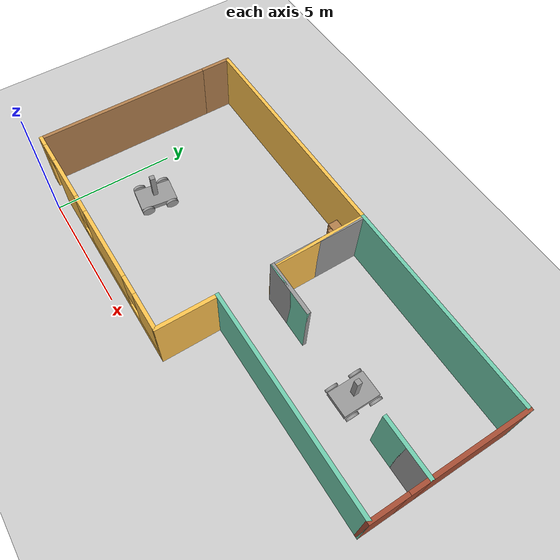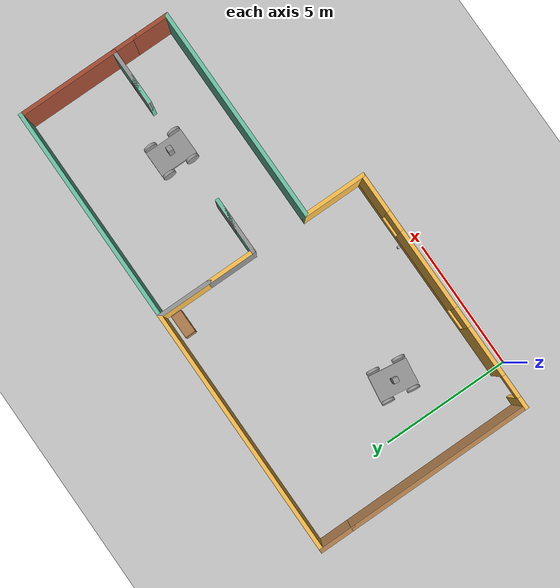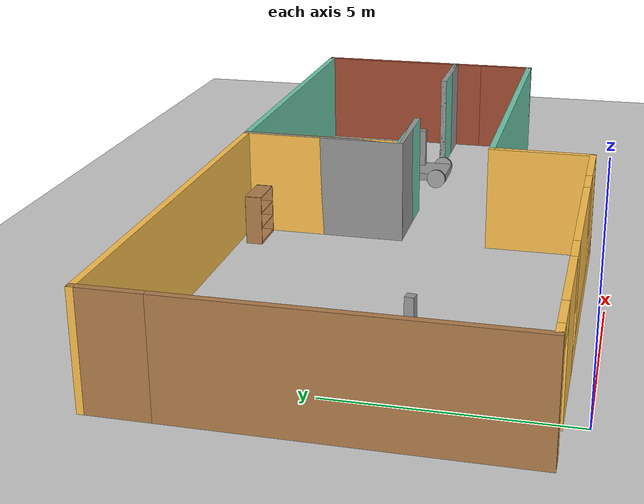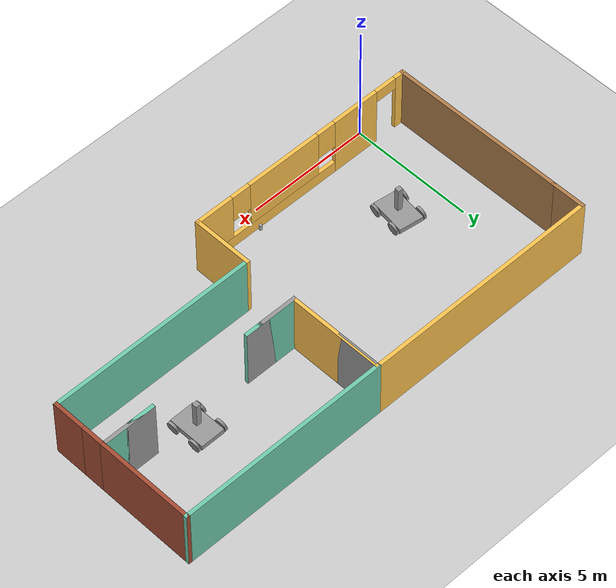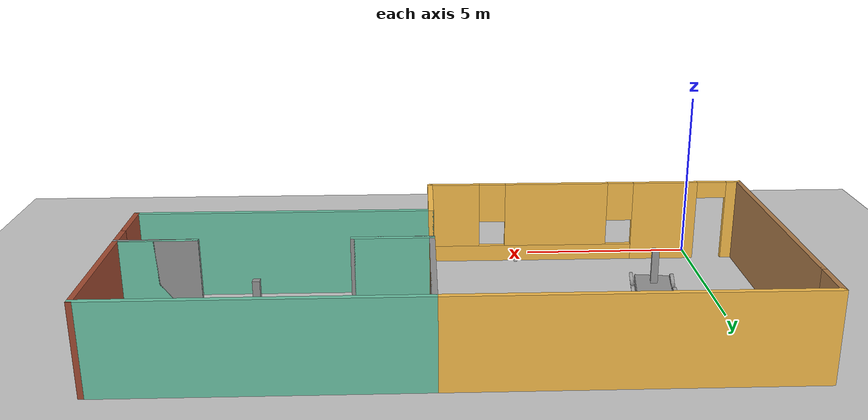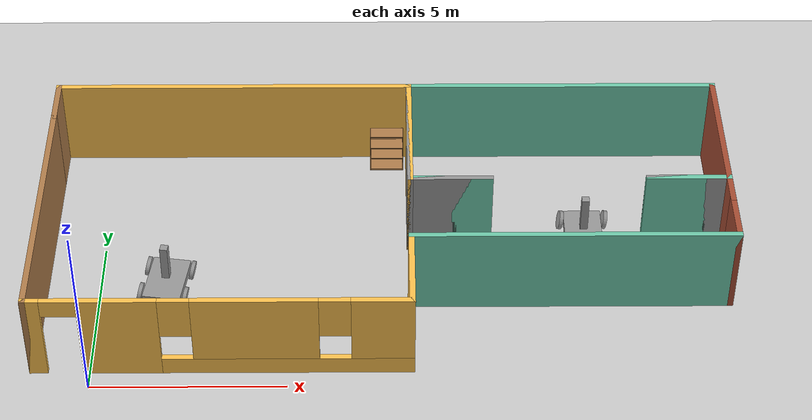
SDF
<sdf version="1.6">
 <world name="default">
  <plugin name="plugin" filename="build/libplugin.so"/>
  <light name="sun" type="directional">
   <pose>0 0 10 0 -0 0</pose>
   <diffuse>0.8 0.8 0.8 1</diffuse>
   <specular>0.1 0.1 0.1 1</specular>
   <attenuation>
    <range>1000</range>
    <constant>0.9</constant>
    <linear>0.01</linear>
    <quadratic>0.001</quadratic>
   </attenuation>
   <direction>-0.5 0.5 -1</direction>
  </light>
  <model name="ground_plane">
   <static>1</static>
   <link name="link">
    <collision name="collision">
     <geometry><plane><normal>0 0 1</normal><size>100 100</size></plane></geometry>
     <surface><friction><ode><mu>100</mu><mu2>50</mu2></ode></friction></surface>
    </collision>
    <visual name="visual">
     <cast_shadows>0</cast_shadows>
     <geometry><plane><normal>0 0 1</normal><size>100 100</size></plane></geometry>
     <material>
      <script><uri>file://media/materials/scripts/gazebo.material</uri><name>Gazebo/Grey</name></script>
     </material>
    </visual>
   </link>
  </model>
  <gravity>0 0 -9.8</gravity>
  <magnetic_field>6e-06 2.3e-05 -4.2e-05</magnetic_field>
  <atmosphere type="adiabatic"/>
  <physics name="default_physics" default="0" type="ode">
   <max_step_size>0.001</max_step_size>
   <real_time_factor>1</real_time_factor>
   <real_time_update_rate>1000</real_time_update_rate>
  </physics>
  <scene><ambient>0.4 0.4 0.4 1</ambient><background>0.7 0.7 0.7 1</background><shadows>1</shadows></scene>
  <spherical_coordinates>
   <surface_model>EARTH_WGS84</surface_model>
   <latitude_deg>0</latitude_deg>
   <longitude_deg>0</longitude_deg>
   <elevation>0</elevation>
   <heading_deg>0</heading_deg>
  </spherical_coordinates>
  <model name="building">
   <pose>7.51855 4.75967 0 0 -0 0</pose>
   <link name="Wall_1">
    <collision name="Wall_1_Collision">
     <geometry><box><size>7.25 0.15 2.5</size></box></geometry>
     <pose>0 0 1.25 0 -0 0</pose>
    </collision>
    <visual name="Wall_1_Visual">
     <pose>0 0 1.25 0 -0 0</pose>
     <geometry><box><size>7.25 0.15 2.5</size></box></geometry>
     <material>
      <script><uri>file://media/materials/scripts/gazebo.material</uri><name>Gazebo/Wood</name></script>
      <ambient>1 0.764706 0.305882 1</ambient>
     </material>
    </visual>
    <pose>-8.975 -0.65 0 0 0 -1.5708</pose>
   </link>
   <link name="Wall_10">
    <collision name="Wall_10_Collision">
     <geometry><box><size>8.5 0.15 2.5</size></box></geometry>
     <pose>0 0 1.25 0 -0 0</pose>
    </collision>
    <visual name="Wall_10_Visual">
     <pose>0 0 1.25 0 -0 0</pose>
     <geometry><box><size>8.5 0.15 2.5</size></box></geometry>
     <material>
      <script><uri>file://media/materials/scripts/gazebo.material</uri><name>Gazebo/Grey</name></script>
      <ambient>0.435294 0.796078 0.67451 1</ambient>
     </material>
    </visual>
    <pose>4.8 4.2 0 0 -0 3.14159</pose>
   </link>
   <link name="Wall_11">
    <collision name="Wall_11_Collision">
     <geometry><box><size>4 0.15 2.5</size></box></geometry>
     <pose>0 0 1.25 0 -0 0</pose>
    </collision>
    <visual name="Wall_11_Visual">
     <pose>0 0 1.25 0 -0 0</pose>
     <geometry><box><size>4 0.15 2.5</size></box></geometry>
     <material>
      <script><uri>file://media/materials/scripts/gazebo.material</uri><name>Gazebo/Grey</name></script>
      <ambient>1 1 1 1</ambient>
     </material>
    </visual>
    <pose>0.625 2.275 0 0 0 -1.5708</pose>
   </link>
   <link name="Wall_12">
    <collision name="Wall_12_Collision">
     <geometry><box><size>2.25 0.15 2.5</size></box></geometry>
     <pose>0 0 1.25 0 -0 0</pose>
    </collision>
    <visual name="Wall_12_Visual">
     <pose>0 0 1.25 0 -0 0</pose>
     <geometry><box><size>2.25 0.15 2.5</size></box></geometry>
     <material>
      <script><uri>file://media/materials/scripts/gazebo.material</uri><name>Gazebo/Grey</name></script>
      <ambient>1 1 1 1</ambient>
     </material>
    </visual>
    <pose>1.675 0.35 0 0 -0 0</pose>
   </link>
   <link name="Wall_13">
    <collision name="Wall_13_Collision">
     <geometry><box><size>2.25 0.15 2.5</size></box></geometry>
     <pose>0 0 1.25 0 -0 0</pose>
    </collision>
    <visual name="Wall_13_Visual">
     <pose>0 0 1.25 0 -0 0</pose>
     <geometry><box><size>2.25 0.15 2.5</size></box></geometry>
     <material>
      <script><uri>file://media/materials/scripts/gazebo.material</uri><name>Gazebo/Grey</name></script>
      <ambient>0.435294 0.796078 0.67451 1</ambient>
     </material>
    </visual>
    <pose>1.675 0.35 0 0 -0 3.14159</pose>
   </link>
   <link name="Wall_14">
    <collision name="Wall_14_Collision">
     <geometry><box><size>4 0.15 2.5</size></box></geometry>
     <pose>0 0 1.25 0 -0 0</pose>
    </collision>
    <visual name="Wall_14_Visual">
     <pose>0 0 1.25 0 -0 0</pose>
     <geometry><box><size>4 0.15 2.5</size></box></geometry>
     <material>
      <script><uri>file://media/materials/scripts/gazebo.material</uri><name>Gazebo/Grey</name></script>
      <ambient>1 0.764706 0.305882 1</ambient>
     </material>
    </visual>
    <pose>0.625 2.275 0 0 -0 1.5708</pose>
   </link>
   <link name="Wall_15">
    <collision name="Wall_15_Collision">
     <geometry><box><size>9.75 0.15 2.5</size></box></geometry>
     <pose>0 0 1.25 0 -0 0</pose>
    </collision>
    <visual name="Wall_15_Visual">
     <pose>0 0 1.25 0 -0 0</pose>
     <geometry><box><size>9.75 0.15 2.5</size></box></geometry>
     <material>
      <script><uri>file://media/materials/scripts/gazebo.material</uri><name>Gazebo/Grey</name></script>
      <ambient>1 0.764706 0.305882 1</ambient>
     </material>
    </visual>
    <pose>-4.175 4.2 0 0 -0 3.14159</pose>
   </link>
   <link name="Wall_16">
    <collision name="Wall_16_Collision">
     <geometry><box><size>1.45 0.15 2.5</size></box></geometry>
     <pose>0 0 1.25 0 -0 0</pose>
    </collision>
    <visual name="Wall_16_Visual">
     <pose>0 0 1.25 0 -0 0</pose>
     <geometry><box><size>1.45 0.15 2.5</size></box></geometry>
     <material>
      <script><uri>file://media/materials/scripts/gazebo.material</uri><name>Gazebo/Wood</name></script>
      <ambient>1 0.764706 0.305882 1</ambient>
     </material>
    </visual>
    <pose>-8.975 3.55 0 0 0 -1.5708</pose>
   </link>
   <link name="Wall_2">
    <pose>-4.175 -4.2 0 0 -0 0</pose>
    <visual name="Wall_2_Visual_0">
     <pose>-4.6375 0 1.25 0 -0 0</pose>
     <geometry><box><size>0.475 0.15 2.5</size></box></geometry>
     <material>
      <script><uri>file://media/materials/scripts/gazebo.material</uri><name>Gazebo/Grey</name></script>
      <ambient>1 0.764706 0.305882 1</ambient>
     </material>
    </visual>
    <collision name="Wall_2_Collision_0">
     <geometry><box><size>0.475 0.15 2.5</size></box></geometry>
     <pose>-4.6375 0 1.25 0 -0 0</pose>
    </collision>
    <visual name="Wall_2_Visual_1">
     <pose>-2.5 0 1.25 0 -0 0</pose>
     <geometry><box><size>2 0.15 2.5</size></box></geometry>
     <material>
      <script><uri>file://media/materials/scripts/gazebo.material</uri><name>Gazebo/Grey</name></script>
      <ambient>1 0.764706 0.305882 1</ambient>
     </material>
    </visual>
    <collision name="Wall_2_Collision_1">
     <geometry><box><size>2 0.15 2.5</size></box></geometry>
     <pose>-2.5 0 1.25 0 -0 0</pose>
    </collision>
    <visual name="Wall_2_Visual_2">
     <pose>1.6875 0 0.25 0 -0 0</pose>
     <geometry><box><size>6.375 0.15 0.5</size></box></geometry>
     <material>
      <script><uri>file://media/materials/scripts/gazebo.material</uri><name>Gazebo/Grey</name></script>
      <ambient>1 0.764706 0.305882 1</ambient>
     </material>
    </visual>
    <collision name="Wall_2_Collision_2">
     <geometry><box><size>6.375 0.15 0.5</size></box></geometry>
     <pose>1.6875 0 0.25 0 -0 0</pose>
    </collision>
    <visual name="Wall_2_Visual_3">
     <pose>0.89 0 1.5 0 -0 0</pose>
     <geometry><box><size>3.18 0.15 2</size></box></geometry>
     <material>
      <script><uri>file://media/materials/scripts/gazebo.material</uri><name>Gazebo/Grey</name></script>
      <ambient>1 0.764706 0.305882 1</ambient>
     </material>
    </visual>
    <collision name="Wall_2_Collision_3">
     <geometry><box><size>3.18 0.15 2</size></box></geometry>
     <pose>0.89 0 1.5 0 -0 0</pose>
    </collision>
    <visual name="Wall_2_Visual_4">
     <pose>4.0775 0 1.5 0 -0 0</pose>
     <geometry><box><size>1.595 0.15 2</size></box></geometry>
     <material>
      <script><uri>file://media/materials/scripts/gazebo.material</uri><name>Gazebo/Grey</name></script>
      <ambient>1 0.764706 0.305882 1</ambient>
     </material>
    </visual>
    <collision name="Wall_2_Collision_4">
     <geometry><box><size>1.595 0.15 2</size></box></geometry>
     <pose>4.0775 0 1.5 0 -0 0</pose>
    </collision>
    <visual name="Wall_2_Visual_5">
     <pose>-1.1 0 1.9 0 -0 0</pose>
     <geometry><box><size>0.8 0.15 1.2</size></box></geometry>
     <material>
      <script><uri>file://media/materials/scripts/gazebo.material</uri><name>Gazebo/Grey</name></script>
      <ambient>1 0.764706 0.305882 1</ambient>
     </material>
    </visual>
    <collision name="Wall_2_Collision_5">
     <geometry><box><size>0.8 0.15 1.2</size></box></geometry>
     <pose>-1.1 0 1.9 0 -0 0</pose>
    </collision>
    <visual name="Wall_2_Visual_6">
     <pose>2.88 0 1.9 0 -0 0</pose>
     <geometry><box><size>0.8 0.15 1.2</size></box></geometry>
     <material>
      <script><uri>file://media/materials/scripts/gazebo.material</uri><name>Gazebo/Grey</name></script>
      <ambient>1 0.764706 0.305882 1</ambient>
     </material>
    </visual>
    <collision name="Wall_2_Collision_6">
     <geometry><box><size>0.8 0.15 1.2</size></box></geometry>
     <pose>2.88 0 1.9 0 -0 0</pose>
    </collision>
    <visual name="Wall_2_Visual_7">
     <pose>-3.95 0 2.25 0 -0 0</pose>
     <geometry><box><size>0.9 0.15 0.5</size></box></geometry>
     <material>
      <script><uri>file://media/materials/scripts/gazebo.material</uri><name>Gazebo/Grey</name></script>
      <ambient>1 0.764706 0.305882 1</ambient>
     </material>
    </visual>
    <collision name="Wall_2_Collision_7">
     <geometry><box><size>0.9 0.15 0.5</size></box></geometry>
     <pose>-3.95 0 2.25 0 -0 0</pose>
    </collision>
   </link>
   <link name="Wall_3">
    <collision name="Wall_3_Collision">
     <geometry><box><size>2.5 0.15 2.5</size></box></geometry>
     <pose>0 0 1.25 0 -0 0</pose>
    </collision>
    <visual name="Wall_3_Visual">
     <pose>0 0 1.25 0 -0 0</pose>
     <geometry><box><size>2.5 0.15 2.5</size></box></geometry>
     <material>
      <script><uri>file://media/materials/scripts/gazebo.material</uri><name>Gazebo/Grey</name></script>
      <ambient>1 0.764706 0.305882 1</ambient>
     </material>
    </visual>
    <pose>0.625 -3.025 0 0 -0 1.5708</pose>
   </link>
   <link name="Wall_4">
    <collision name="Wall_4_Collision">
     <geometry><box><size>8.5 0.15 2.5</size></box></geometry>
     <pose>0 0 1.25 0 -0 0</pose>
    </collision>
    <visual name="Wall_4_Visual">
     <pose>0 0 1.25 0 -0 0</pose>
     <geometry><box><size>8.5 0.15 2.5</size></box></geometry>
     <material>
      <script><uri>file://media/materials/scripts/gazebo.material</uri><name>Gazebo/Grey</name></script>
      <ambient>0.435294 0.796078 0.67451 1</ambient>
     </material>
    </visual>
    <pose>4.8 -1.85 0 0 -0 0</pose>
   </link>
   <link name="Wall_5">
    <collision name="Wall_5_Collision">
     <geometry><box><size>1.5 0.15 2.5</size></box></geometry>
     <pose>0 0 1.25 0 -0 0</pose>
    </collision>
    <visual name="Wall_5_Visual">
     <pose>0 0 1.25 0 -0 0</pose>
     <geometry><box><size>1.5 0.15 2.5</size></box></geometry>
     <material>
      <script><uri>file://media/materials/scripts/gazebo.material</uri><name>Gazebo/Bricks</name></script>
      <ambient>0.435294 0.796078 0.67451 1</ambient>
     </material>
    </visual>
    <pose>8.975 -1.175 0 0 -0 1.5708</pose>
   </link>
   <link name="Wall_6">
    <collision name="Wall_6_Collision">
     <geometry><box><size>1 0.15 2.5</size></box></geometry>
     <pose>0 0 1.25 0 -0 0</pose>
    </collision>
    <visual name="Wall_6_Visual">
     <pose>0 0 1.25 0 -0 0</pose>
     <geometry><box><size>1 0.15 2.5</size></box></geometry>
     <material>
      <script><uri>file://media/materials/scripts/gazebo.material</uri><name>Gazebo/Bricks</name></script>
      <ambient>0.435294 0.796078 0.67451 1</ambient>
     </material>
    </visual>
    <pose>8.975 -0.075 0 0 -0 1.5708</pose>
   </link>
   <link name="Wall_7">
    <collision name="Wall_7_Collision">
     <geometry><box><size>2.25 0.15 2.5</size></box></geometry>
     <pose>0 0 1.25 0 -0 0</pose>
    </collision>
    <visual name="Wall_7_Visual">
     <pose>0 0 1.25 0 -0 0</pose>
     <geometry><box><size>2.25 0.15 2.5</size></box></geometry>
     <material>
      <script><uri>file://media/materials/scripts/gazebo.material</uri><name>Gazebo/Grey</name></script>
      <ambient>1 1 1 1</ambient>
     </material>
    </visual>
    <pose>7.925 0.35 0 0 -0 3.14159</pose>
   </link>
   <link name="Wall_8">
    <collision name="Wall_8_Collision">
     <geometry><box><size>2.25 0.15 2.5</size></box></geometry>
     <pose>0 0 1.25 0 -0 0</pose>
    </collision>
    <visual name="Wall_8_Visual">
     <pose>0 0 1.25 0 -0 0</pose>
     <geometry><box><size>2.25 0.15 2.5</size></box></geometry>
     <material>
      <script><uri>file://media/materials/scripts/gazebo.material</uri><name>Gazebo/Grey</name></script>
      <ambient>0.435294 0.796078 0.67451 1</ambient>
     </material>
    </visual>
    <pose>7.925 0.35 0 0 -0 0</pose>
   </link>
   <link name="Wall_9">
    <collision name="Wall_9_Collision">
     <geometry><box><size>4 0.15 2.5</size></box></geometry>
     <pose>0 0 1.25 0 -0 0</pose>
    </collision>
    <visual name="Wall_9_Visual">
     <pose>0 0 1.25 0 -0 0</pose>
     <geometry><box><size>4 0.15 2.5</size></box></geometry>
     <material>
      <script><uri>file://media/materials/scripts/gazebo.material</uri><name>Gazebo/Bricks</name></script>
      <ambient>0.435294 0.796078 0.67451 1</ambient>
     </material>
    </visual>
    <pose>8.975 2.275 0 0 -0 1.5708</pose>
   </link>
   <static>1</static>
  </model>
  <model name="four_wheel">
   <link name="link_0">
    <pose>0 0 0.383333 0 -0 0</pose>
    <inertial>
     <mass>1</mass>
     <inertia>
      <ixx>0.166667</ixx>
      <ixy>0</ixy>
      <ixz>0</ixz>
      <iyy>0.166667</iyy>
      <iyz>0</iyz>
      <izz>0.166667</izz>
     </inertia>
    </inertial>
    <visual name="visual">
     <geometry><box><size>1 1.5 0.2</size></box></geometry>
     <material>
      <lighting>1</lighting>
      <script><uri>file://media/materials/scripts/gazebo.material</uri><name>Gazebo/Grey</name></script>
      <ambient>0.3 0.3 0.3 1</ambient>
      <diffuse>0.7 0.7 0.7 1</diffuse>
      <specular>0.01 0.01 0.01 1</specular>
      <emissive>0 0 0 1</emissive>
      <shader type="vertex"><normal_map>__default__</normal_map></shader>
     </material>
    </visual>
    <collision name="collision">
     <geometry><box><size>1 1.5 0.2</size></box></geometry>
     <surface>
      <friction>
       <ode><mu>1</mu><mu2>1</mu2><fdir1>0 0 0</fdir1><slip1>0</slip1><slip2>0</slip2></ode>
       <torsional>
        <coefficient>1</coefficient>
        <patch_radius>0</patch_radius>
        <surface_radius>0</surface_radius>
        <use_patch_radius>1</use_patch_radius>
        <ode><slip>0</slip></ode>
       </torsional>
      </friction>
      <bounce><restitution_coefficient>0</restitution_coefficient><threshold>1e+06</threshold></bounce>
      <contact>
       <collide_without_contact>0</collide_without_contact>
       <collide_without_contact_bitmask>1</collide_without_contact_bitmask>
       <collide_bitmask>1</collide_bitmask>
       <ode>
        <soft_cfm>0</soft_cfm>
        <soft_erp>0.2</soft_erp>
        <kp>1e+13</kp>
        <kd>1</kd>
        <max_vel>0.01</max_vel>
        <min_depth>0</min_depth>
       </ode>
       <bullet>
        <split_impulse>1</split_impulse>
        <split_impulse_penetration_threshold>-0.01</split_impulse_penetration_threshold>
        <soft_cfm>0</soft_cfm>
        <soft_erp>0.2</soft_erp>
        <kp>1e+13</kp>
        <kd>1</kd>
       </bullet>
      </contact>
     </surface>
    </collision>
   </link>
   <link name="link_1">
    <pose>0.591385 -0.5 0.383333 0 -0 0</pose>
    <inertial>
     <mass>1</mass>
     <inertia><ixx>0.145833</ixx><ixy>0</ixy><ixz>0</ixz><iyy>0.145833</iyy><iyz>0</iyz><izz>0.125</izz></inertia>
    </inertial>
    <visual name="visual">
     <pose>0 0 0 -3.14159 1.40159 -3.14159</pose>
     <geometry><cylinder><radius>0.25</radius><length>0.1</length></cylinder></geometry>
     <material>
      <lighting>1</lighting>
      <script><uri>file://media/materials/scripts/gazebo.material</uri><name>Gazebo/Grey</name></script>
      <ambient>0.3 0.3 0.3 1</ambient>
      <diffuse>0.7 0.7 0.7 1</diffuse>
      <specular>0.01 0.01 0.01 1</specular>
      <emissive>0 0 0 1</emissive>
      <shader type="vertex"><normal_map>__default__</normal_map></shader>
     </material>
    </visual>
    <collision name="collision">
     <pose>0 0 0 -3.14159 1.40159 -3.14159</pose>
     <geometry><cylinder><radius>0.25</radius><length>0.1</length></cylinder></geometry>
     <surface>
      <friction>
       <ode><mu>1</mu><mu2>1</mu2><fdir1>0 0 0</fdir1><slip1>0</slip1><slip2>0</slip2></ode>
       <torsional>
        <coefficient>1</coefficient>
        <patch_radius>0</patch_radius>
        <surface_radius>0</surface_radius>
        <use_patch_radius>1</use_patch_radius>
        <ode><slip>0</slip></ode>
       </torsional>
      </friction>
      <bounce><restitution_coefficient>0</restitution_coefficient><threshold>1e+06</threshold></bounce>
      <contact>
       <collide_without_contact>0</collide_without_contact>
       <collide_without_contact_bitmask>1</collide_without_contact_bitmask>
       <collide_bitmask>1</collide_bitmask>
       <ode>
        <soft_cfm>0</soft_cfm>
        <soft_erp>0.2</soft_erp>
        <kp>1e+13</kp>
        <kd>1</kd>
        <max_vel>0.01</max_vel>
        <min_depth>0</min_depth>
       </ode>
       <bullet>
        <split_impulse>1</split_impulse>
        <split_impulse_penetration_threshold>-0.01</split_impulse_penetration_threshold>
        <soft_cfm>0</soft_cfm>
        <soft_erp>0.2</soft_erp>
        <kp>1e+13</kp>
        <kd>1</kd>
       </bullet>
      </contact>
     </surface>
    </collision>
   </link>
   <link name="link_1_clone">
    <pose>0.591386 0.5 0.383333 0 -0 0</pose>
    <inertial>
     <mass>1</mass>
     <inertia><ixx>0.145833</ixx><ixy>0</ixy><ixz>0</ixz><iyy>0.145833</iyy><iyz>0</iyz><izz>0.125</izz></inertia>
    </inertial>
    <visual name="visual">
     <pose>0 0 0 -3.14159 1.40159 -3.14159</pose>
     <geometry><cylinder><radius>0.25</radius><length>0.1</length></cylinder></geometry>
     <material>
      <lighting>1</lighting>
      <script><uri>file://media/materials/scripts/gazebo.material</uri><name>Gazebo/Grey</name></script>
      <ambient>0.3 0.3 0.3 1</ambient>
      <diffuse>0.7 0.7 0.7 1</diffuse>
      <specular>0.01 0.01 0.01 1</specular>
      <emissive>0 0 0 1</emissive>
      <shader type="vertex"><normal_map>__default__</normal_map></shader>
     </material>
    </visual>
    <collision name="collision">
     <pose>0 0 0 -3.14159 1.40159 -3.14159</pose>
     <geometry><cylinder><radius>0.25</radius><length>0.1</length></cylinder></geometry>
     <surface>
      <friction>
       <ode><mu>1</mu><mu2>1</mu2><fdir1>0 0 0</fdir1><slip1>0</slip1><slip2>0</slip2></ode>
       <torsional>
        <coefficient>1</coefficient>
        <patch_radius>0</patch_radius>
        <surface_radius>0</surface_radius>
        <use_patch_radius>1</use_patch_radius>
        <ode><slip>0</slip></ode>
       </torsional>
      </friction>
      <bounce><restitution_coefficient>0</restitution_coefficient><threshold>1e+06</threshold></bounce>
      <contact>
       <collide_without_contact>0</collide_without_contact>
       <collide_without_contact_bitmask>1</collide_without_contact_bitmask>
       <collide_bitmask>1</collide_bitmask>
       <ode>
        <soft_cfm>0</soft_cfm>
        <soft_erp>0.2</soft_erp>
        <kp>1e+13</kp>
        <kd>1</kd>
        <max_vel>0.01</max_vel>
        <min_depth>0</min_depth>
       </ode>
       <bullet>
        <split_impulse>1</split_impulse>
        <split_impulse_penetration_threshold>-0.01</split_impulse_penetration_threshold>
        <soft_cfm>0</soft_cfm>
        <soft_erp>0.2</soft_erp>
        <kp>1e+13</kp>
        <kd>1</kd>
       </bullet>
      </contact>
     </surface>
    </collision>
   </link>
   <link name="link_1_clone_0">
    <pose>-0.591386 -0.5 0.383333 0 -0 0</pose>
    <inertial>
     <mass>1</mass>
     <inertia><ixx>0.145833</ixx><ixy>0</ixy><ixz>0</ixz><iyy>0.145833</iyy><iyz>0</iyz><izz>0.125</izz></inertia>
    </inertial>
    <visual name="visual">
     <pose>0 0 0 -3.14159 1.40159 -3.14159</pose>
     <geometry><cylinder><radius>0.25</radius><length>0.1</length></cylinder></geometry>
     <material>
      <lighting>1</lighting>
      <script><uri>file://media/materials/scripts/gazebo.material</uri><name>Gazebo/Grey</name></script>
      <ambient>0.3 0.3 0.3 1</ambient>
      <diffuse>0.7 0.7 0.7 1</diffuse>
      <specular>0.01 0.01 0.01 1</specular>
      <emissive>0 0 0 1</emissive>
      <shader type="vertex"><normal_map>__default__</normal_map></shader>
     </material>
    </visual>
    <collision name="collision">
     <pose>0 0 0 -3.14159 1.40159 -3.14159</pose>
     <geometry><cylinder><radius>0.25</radius><length>0.1</length></cylinder></geometry>
     <surface>
      <friction>
       <ode><mu>1</mu><mu2>1</mu2><fdir1>0 0 0</fdir1><slip1>0</slip1><slip2>0</slip2></ode>
       <torsional>
        <coefficient>1</coefficient>
        <patch_radius>0</patch_radius>
        <surface_radius>0</surface_radius>
        <use_patch_radius>1</use_patch_radius>
        <ode><slip>0</slip></ode>
       </torsional>
      </friction>
      <bounce><restitution_coefficient>0</restitution_coefficient><threshold>1e+06</threshold></bounce>
      <contact>
       <collide_without_contact>0</collide_without_contact>
       <collide_without_contact_bitmask>1</collide_without_contact_bitmask>
       <collide_bitmask>1</collide_bitmask>
       <ode>
        <soft_cfm>0</soft_cfm>
        <soft_erp>0.2</soft_erp>
        <kp>1e+13</kp>
        <kd>1</kd>
        <max_vel>0.01</max_vel>
        <min_depth>0</min_depth>
       </ode>
       <bullet>
        <split_impulse>1</split_impulse>
        <split_impulse_penetration_threshold>-0.01</split_impulse_penetration_threshold>
        <soft_cfm>0</soft_cfm>
        <soft_erp>0.2</soft_erp>
        <kp>1e+13</kp>
        <kd>1</kd>
       </bullet>
      </contact>
     </surface>
    </collision>
   </link>
   <link name="link_1_clone_1">
    <pose>-0.591386 0.5 0.383333 0 -0 0</pose>
    <inertial>
     <mass>1</mass>
     <inertia><ixx>0.145833</ixx><ixy>0</ixy><ixz>0</ixz><iyy>0.145833</iyy><iyz>0</iyz><izz>0.125</izz></inertia>
    </inertial>
    <visual name="visual">
     <pose>0 0 0 -3.14159 1.40159 -3.14159</pose>
     <geometry><cylinder><radius>0.25</radius><length>0.1</length></cylinder></geometry>
     <material>
      <lighting>1</lighting>
      <script><uri>file://media/materials/scripts/gazebo.material</uri><name>Gazebo/Grey</name></script>
      <ambient>0.3 0.3 0.3 1</ambient>
      <diffuse>0.7 0.7 0.7 1</diffuse>
      <specular>0.01 0.01 0.01 1</specular>
      <emissive>0 0 0 1</emissive>
      <shader type="vertex"><normal_map>__default__</normal_map></shader>
     </material>
    </visual>
    <collision name="collision">
     <pose>0 0 0 -3.14159 1.40159 -3.14159</pose>
     <geometry><cylinder><radius>0.25</radius><length>0.1</length></cylinder></geometry>
     <surface>
      <friction>
       <ode><mu>1</mu><mu2>1</mu2><fdir1>0 0 0</fdir1><slip1>0</slip1><slip2>0</slip2></ode>
       <torsional>
        <coefficient>1</coefficient>
        <patch_radius>0</patch_radius>
        <surface_radius>0</surface_radius>
        <use_patch_radius>1</use_patch_radius>
        <ode><slip>0</slip></ode>
       </torsional>
      </friction>
      <bounce><restitution_coefficient>0</restitution_coefficient><threshold>1e+06</threshold></bounce>
      <contact>
       <collide_without_contact>0</collide_without_contact>
       <collide_without_contact_bitmask>1</collide_without_contact_bitmask>
       <collide_bitmask>1</collide_bitmask>
       <ode>
        <soft_cfm>0</soft_cfm>
        <soft_erp>0.2</soft_erp>
        <kp>1e+13</kp>
        <kd>1</kd>
        <max_vel>0.01</max_vel>
        <min_depth>0</min_depth>
       </ode>
       <bullet>
        <split_impulse>1</split_impulse>
        <split_impulse_penetration_threshold>-0.01</split_impulse_penetration_threshold>
        <soft_cfm>0</soft_cfm>
        <soft_erp>0.2</soft_erp>
        <kp>1e+13</kp>
        <kd>1</kd>
       </bullet>
      </contact>
     </surface>
    </collision>
   </link>
   <link name="link_2">
    <pose>0 0 1.08333 0 -0 0</pose>
    <inertial>
     <mass>1</mass>
     <inertia>
      <ixx>0.166667</ixx>
      <ixy>0</ixy>
      <ixz>0</ixz>
      <iyy>0.166667</iyy>
      <iyz>0</iyz>
      <izz>0.166667</izz>
     </inertia>
    </inertial>
    <visual name="visual">
     <geometry><box><size>0.2 0.2 1</size></box></geometry>
     <material>
      <lighting>1</lighting>
      <script><uri>file://media/materials/scripts/gazebo.material</uri><name>Gazebo/Grey</name></script>
      <ambient>0.3 0.3 0.3 1</ambient>
      <diffuse>0.7 0.7 0.7 1</diffuse>
      <specular>0.01 0.01 0.01 1</specular>
      <emissive>0 0 0 1</emissive>
      <shader type="vertex"><normal_map>__default__</normal_map></shader>
     </material>
    </visual>
    <collision name="collision">
     <geometry><box><size>0.2 0.2 1</size></box></geometry>
     <surface>
      <friction>
       <ode><mu>1</mu><mu2>1</mu2><fdir1>0 0 0</fdir1><slip1>0</slip1><slip2>0</slip2></ode>
       <torsional>
        <coefficient>1</coefficient>
        <patch_radius>0</patch_radius>
        <surface_radius>0</surface_radius>
        <use_patch_radius>1</use_patch_radius>
        <ode><slip>0</slip></ode>
       </torsional>
      </friction>
      <bounce><restitution_coefficient>0</restitution_coefficient><threshold>1e+06</threshold></bounce>
      <contact>
       <collide_without_contact>0</collide_without_contact>
       <collide_without_contact_bitmask>1</collide_without_contact_bitmask>
       <collide_bitmask>1</collide_bitmask>
       <ode>
        <soft_cfm>0</soft_cfm>
        <soft_erp>0.2</soft_erp>
        <kp>1e+13</kp>
        <kd>1</kd>
        <max_vel>0.01</max_vel>
        <min_depth>0</min_depth>
       </ode>
       <bullet>
        <split_impulse>1</split_impulse>
        <split_impulse_penetration_threshold>-0.01</split_impulse_penetration_threshold>
        <soft_cfm>0</soft_cfm>
        <soft_erp>0.2</soft_erp>
        <kp>1e+13</kp>
        <kd>1</kd>
       </bullet>
      </contact>
     </surface>
    </collision>
   </link>
   <joint name="link_0_JOINT_0" type="revolute">
    <parent>link_0</parent>
    <child>link_1_clone_0</child>
    <axis>
     <xyz>1 0 0</xyz>
     <use_parent_model_frame>0</use_parent_model_frame>
     <limit>
      <lower>-1.79769e+308</lower>
      <upper>1.79769e+308</upper>
      <effort>-1</effort>
      <velocity>-1</velocity>
     </limit>
     <dynamics>
      <spring_reference>0</spring_reference>
      <spring_stiffness>0</spring_stiffness>
      <damping>0</damping>
     </dynamics>
    </axis>
    <physics>
     <ode><limit><cfm>0</cfm><erp>0.2</erp></limit><suspension><cfm>0</cfm><erp>0.2</erp></suspension></ode>
    </physics>
   </joint>
   <joint name="link_0_JOINT_1" type="revolute">
    <parent>link_0</parent>
    <child>link_1_clone_1</child>
    <axis>
     <xyz>1 0 0</xyz>
     <use_parent_model_frame>0</use_parent_model_frame>
     <limit>
      <lower>-1.79769e+308</lower>
      <upper>1.79769e+308</upper>
      <effort>-1</effort>
      <velocity>-1</velocity>
     </limit>
     <dynamics>
      <spring_reference>0</spring_reference>
      <spring_stiffness>0</spring_stiffness>
      <damping>0</damping>
     </dynamics>
    </axis>
    <physics>
     <ode><limit><cfm>0</cfm><erp>0.2</erp></limit><suspension><cfm>0</cfm><erp>0.2</erp></suspension></ode>
    </physics>
   </joint>
   <joint name="link_0_JOINT_3" type="revolute">
    <parent>link_0</parent>
    <child>link_1_clone</child>
    <axis>
     <xyz>1 0 0</xyz>
     <use_parent_model_frame>0</use_parent_model_frame>
     <limit>
      <lower>-1.79769e+308</lower>
      <upper>1.79769e+308</upper>
      <effort>-1</effort>
      <velocity>-1</velocity>
     </limit>
     <dynamics>
      <spring_reference>0</spring_reference>
      <spring_stiffness>0</spring_stiffness>
      <damping>0</damping>
     </dynamics>
    </axis>
    <physics>
     <ode><limit><cfm>0</cfm><erp>0.2</erp></limit><suspension><cfm>0</cfm><erp>0.2</erp></suspension></ode>
    </physics>
   </joint>
   <joint name="link_0_JOINT_4" type="revolute">
    <parent>link_0</parent>
    <child>link_1</child>
    <axis>
     <xyz>1 0 0</xyz>
     <use_parent_model_frame>0</use_parent_model_frame>
     <limit>
      <lower>-1.79769e+308</lower>
      <upper>1.79769e+308</upper>
      <effort>-1</effort>
      <velocity>-1</velocity>
     </limit>
     <dynamics>
      <spring_reference>0</spring_reference>
      <spring_stiffness>0</spring_stiffness>
      <damping>0</damping>
     </dynamics>
    </axis>
    <physics>
     <ode><limit><cfm>0</cfm><erp>0.2</erp></limit><suspension><cfm>0</cfm><erp>0.2</erp></suspension></ode>
    </physics>
   </joint>
   <joint name="link_0_JOINT_6" type="revolute">
    <parent>link_0</parent>
    <child>link_2</child>
    <pose>0 0 -0.5 0 -0 0</pose>
    <axis>
     <xyz>1 0 0</xyz>
     <use_parent_model_frame>0</use_parent_model_frame>
     <limit>
      <lower>-1.79769e+308</lower>
      <upper>1.79769e+308</upper>
      <effort>-1</effort>
      <velocity>-1</velocity>
     </limit>
     <dynamics>
      <spring_reference>0</spring_reference>
      <spring_stiffness>0</spring_stiffness>
      <damping>0</damping>
     </dynamics>
    </axis>
    <physics>
     <ode><limit><cfm>0</cfm><erp>0.2</erp></limit><suspension><cfm>0</cfm><erp>0.2</erp></suspension></ode>
    </physics>
   </joint>
   <static>0</static>
   <pose>1.73445 3.58348 -0.130177 0.001135 0.001899 -0.141947</pose>
  </model>
  <model name="four_wheel_0">
   <link name="link_0">
    <pose>0 0 0.383333 0 -0 0</pose>
    <inertial>
     <mass>1</mass>
     <inertia>
      <ixx>0.166667</ixx>
      <ixy>0</ixy>
      <ixz>0</ixz>
      <iyy>0.166667</iyy>
      <iyz>0</iyz>
      <izz>0.166667</izz>
     </inertia>
    </inertial>
    <visual name="visual">
     <geometry><box><size>1 1.5 0.2</size></box></geometry>
     <material>
      <lighting>1</lighting>
      <script><uri>file://media/materials/scripts/gazebo.material</uri><name>Gazebo/Grey</name></script>
      <ambient>0.3 0.3 0.3 1</ambient>
      <diffuse>0.7 0.7 0.7 1</diffuse>
      <specular>0.01 0.01 0.01 1</specular>
      <emissive>0 0 0 1</emissive>
      <shader type="vertex"><normal_map>__default__</normal_map></shader>
     </material>
    </visual>
    <collision name="collision">
     <geometry><box><size>1 1.5 0.2</size></box></geometry>
     <surface>
      <friction>
       <ode><mu>1</mu><mu2>1</mu2><fdir1>0 0 0</fdir1><slip1>0</slip1><slip2>0</slip2></ode>
       <torsional>
        <coefficient>1</coefficient>
        <patch_radius>0</patch_radius>
        <surface_radius>0</surface_radius>
        <use_patch_radius>1</use_patch_radius>
        <ode><slip>0</slip></ode>
       </torsional>
      </friction>
      <bounce><restitution_coefficient>0</restitution_coefficient><threshold>1e+06</threshold></bounce>
      <contact>
       <collide_without_contact>0</collide_without_contact>
       <collide_without_contact_bitmask>1</collide_without_contact_bitmask>
       <collide_bitmask>1</collide_bitmask>
       <ode>
        <soft_cfm>0</soft_cfm>
        <soft_erp>0.2</soft_erp>
        <kp>1e+13</kp>
        <kd>1</kd>
        <max_vel>0.01</max_vel>
        <min_depth>0</min_depth>
       </ode>
       <bullet>
        <split_impulse>1</split_impulse>
        <split_impulse_penetration_threshold>-0.01</split_impulse_penetration_threshold>
        <soft_cfm>0</soft_cfm>
        <soft_erp>0.2</soft_erp>
        <kp>1e+13</kp>
        <kd>1</kd>
       </bullet>
      </contact>
     </surface>
    </collision>
   </link>
   <link name="link_1">
    <pose>0.591385 -0.5 0.383333 0 -0 0</pose>
    <inertial>
     <mass>1</mass>
     <inertia><ixx>0.145833</ixx><ixy>0</ixy><ixz>0</ixz><iyy>0.145833</iyy><iyz>0</iyz><izz>0.125</izz></inertia>
    </inertial>
    <visual name="visual">
     <pose>0 0 0 -3.14159 1.40159 -3.14159</pose>
     <geometry><cylinder><radius>0.25</radius><length>0.1</length></cylinder></geometry>
     <material>
      <lighting>1</lighting>
      <script><uri>file://media/materials/scripts/gazebo.material</uri><name>Gazebo/Grey</name></script>
      <ambient>0.3 0.3 0.3 1</ambient>
      <diffuse>0.7 0.7 0.7 1</diffuse>
      <specular>0.01 0.01 0.01 1</specular>
      <emissive>0 0 0 1</emissive>
      <shader type="vertex"><normal_map>__default__</normal_map></shader>
     </material>
    </visual>
    <collision name="collision">
     <pose>0 0 0 -3.14159 1.40159 -3.14159</pose>
     <geometry><cylinder><radius>0.25</radius><length>0.1</length></cylinder></geometry>
     <surface>
      <friction>
       <ode><mu>1</mu><mu2>1</mu2><fdir1>0 0 0</fdir1><slip1>0</slip1><slip2>0</slip2></ode>
       <torsional>
        <coefficient>1</coefficient>
        <patch_radius>0</patch_radius>
        <surface_radius>0</surface_radius>
        <use_patch_radius>1</use_patch_radius>
        <ode><slip>0</slip></ode>
       </torsional>
      </friction>
      <bounce><restitution_coefficient>0</restitution_coefficient><threshold>1e+06</threshold></bounce>
      <contact>
       <collide_without_contact>0</collide_without_contact>
       <collide_without_contact_bitmask>1</collide_without_contact_bitmask>
       <collide_bitmask>1</collide_bitmask>
       <ode>
        <soft_cfm>0</soft_cfm>
        <soft_erp>0.2</soft_erp>
        <kp>1e+13</kp>
        <kd>1</kd>
        <max_vel>0.01</max_vel>
        <min_depth>0</min_depth>
       </ode>
       <bullet>
        <split_impulse>1</split_impulse>
        <split_impulse_penetration_threshold>-0.01</split_impulse_penetration_threshold>
        <soft_cfm>0</soft_cfm>
        <soft_erp>0.2</soft_erp>
        <kp>1e+13</kp>
        <kd>1</kd>
       </bullet>
      </contact>
     </surface>
    </collision>
   </link>
   <link name="link_1_clone">
    <pose>0.591386 0.5 0.383333 0 -0 0</pose>
    <inertial>
     <mass>1</mass>
     <inertia><ixx>0.145833</ixx><ixy>0</ixy><ixz>0</ixz><iyy>0.145833</iyy><iyz>0</iyz><izz>0.125</izz></inertia>
    </inertial>
    <visual name="visual">
     <pose>0 0 0 -3.14159 1.40159 -3.14159</pose>
     <geometry><cylinder><radius>0.25</radius><length>0.1</length></cylinder></geometry>
     <material>
      <lighting>1</lighting>
      <script><uri>file://media/materials/scripts/gazebo.material</uri><name>Gazebo/Grey</name></script>
      <ambient>0.3 0.3 0.3 1</ambient>
      <diffuse>0.7 0.7 0.7 1</diffuse>
      <specular>0.01 0.01 0.01 1</specular>
      <emissive>0 0 0 1</emissive>
      <shader type="vertex"><normal_map>__default__</normal_map></shader>
     </material>
    </visual>
    <collision name="collision">
     <pose>0 0 0 -3.14159 1.40159 -3.14159</pose>
     <geometry><cylinder><radius>0.25</radius><length>0.1</length></cylinder></geometry>
     <surface>
      <friction>
       <ode><mu>1</mu><mu2>1</mu2><fdir1>0 0 0</fdir1><slip1>0</slip1><slip2>0</slip2></ode>
       <torsional>
        <coefficient>1</coefficient>
        <patch_radius>0</patch_radius>
        <surface_radius>0</surface_radius>
        <use_patch_radius>1</use_patch_radius>
        <ode><slip>0</slip></ode>
       </torsional>
      </friction>
      <bounce><restitution_coefficient>0</restitution_coefficient><threshold>1e+06</threshold></bounce>
      <contact>
       <collide_without_contact>0</collide_without_contact>
       <collide_without_contact_bitmask>1</collide_without_contact_bitmask>
       <collide_bitmask>1</collide_bitmask>
       <ode>
        <soft_cfm>0</soft_cfm>
        <soft_erp>0.2</soft_erp>
        <kp>1e+13</kp>
        <kd>1</kd>
        <max_vel>0.01</max_vel>
        <min_depth>0</min_depth>
       </ode>
       <bullet>
        <split_impulse>1</split_impulse>
        <split_impulse_penetration_threshold>-0.01</split_impulse_penetration_threshold>
        <soft_cfm>0</soft_cfm>
        <soft_erp>0.2</soft_erp>
        <kp>1e+13</kp>
        <kd>1</kd>
       </bullet>
      </contact>
     </surface>
    </collision>
   </link>
   <link name="link_1_clone_0">
    <pose>-0.591386 -0.5 0.383333 0 -0 0</pose>
    <inertial>
     <mass>1</mass>
     <inertia><ixx>0.145833</ixx><ixy>0</ixy><ixz>0</ixz><iyy>0.145833</iyy><iyz>0</iyz><izz>0.125</izz></inertia>
    </inertial>
    <visual name="visual">
     <pose>0 0 0 -3.14159 1.40159 -3.14159</pose>
     <geometry><cylinder><radius>0.25</radius><length>0.1</length></cylinder></geometry>
     <material>
      <lighting>1</lighting>
      <script><uri>file://media/materials/scripts/gazebo.material</uri><name>Gazebo/Grey</name></script>
      <ambient>0.3 0.3 0.3 1</ambient>
      <diffuse>0.7 0.7 0.7 1</diffuse>
      <specular>0.01 0.01 0.01 1</specular>
      <emissive>0 0 0 1</emissive>
      <shader type="vertex"><normal_map>__default__</normal_map></shader>
     </material>
    </visual>
    <collision name="collision">
     <pose>0 0 0 -3.14159 1.40159 -3.14159</pose>
     <geometry><cylinder><radius>0.25</radius><length>0.1</length></cylinder></geometry>
     <surface>
      <friction>
       <ode><mu>1</mu><mu2>1</mu2><fdir1>0 0 0</fdir1><slip1>0</slip1><slip2>0</slip2></ode>
       <torsional>
        <coefficient>1</coefficient>
        <patch_radius>0</patch_radius>
        <surface_radius>0</surface_radius>
        <use_patch_radius>1</use_patch_radius>
        <ode><slip>0</slip></ode>
       </torsional>
      </friction>
      <bounce><restitution_coefficient>0</restitution_coefficient><threshold>1e+06</threshold></bounce>
      <contact>
       <collide_without_contact>0</collide_without_contact>
       <collide_without_contact_bitmask>1</collide_without_contact_bitmask>
       <collide_bitmask>1</collide_bitmask>
       <ode>
        <soft_cfm>0</soft_cfm>
        <soft_erp>0.2</soft_erp>
        <kp>1e+13</kp>
        <kd>1</kd>
        <max_vel>0.01</max_vel>
        <min_depth>0</min_depth>
       </ode>
       <bullet>
        <split_impulse>1</split_impulse>
        <split_impulse_penetration_threshold>-0.01</split_impulse_penetration_threshold>
        <soft_cfm>0</soft_cfm>
        <soft_erp>0.2</soft_erp>
        <kp>1e+13</kp>
        <kd>1</kd>
       </bullet>
      </contact>
     </surface>
    </collision>
   </link>
   <link name="link_1_clone_1">
    <pose>-0.591386 0.5 0.383333 0 -0 0</pose>
    <inertial>
     <mass>1</mass>
     <inertia><ixx>0.145833</ixx><ixy>0</ixy><ixz>0</ixz><iyy>0.145833</iyy><iyz>0</iyz><izz>0.125</izz></inertia>
    </inertial>
    <visual name="visual">
     <pose>0 0 0 -3.14159 1.40159 -3.14159</pose>
     <geometry><cylinder><radius>0.25</radius><length>0.1</length></cylinder></geometry>
     <material>
      <lighting>1</lighting>
      <script><uri>file://media/materials/scripts/gazebo.material</uri><name>Gazebo/Grey</name></script>
      <ambient>0.3 0.3 0.3 1</ambient>
      <diffuse>0.7 0.7 0.7 1</diffuse>
      <specular>0.01 0.01 0.01 1</specular>
      <emissive>0 0 0 1</emissive>
      <shader type="vertex"><normal_map>__default__</normal_map></shader>
     </material>
    </visual>
    <collision name="collision">
     <pose>0 0 0 -3.14159 1.40159 -3.14159</pose>
     <geometry><cylinder><radius>0.25</radius><length>0.1</length></cylinder></geometry>
     <surface>
      <friction>
       <ode><mu>1</mu><mu2>1</mu2><fdir1>0 0 0</fdir1><slip1>0</slip1><slip2>0</slip2></ode>
       <torsional>
        <coefficient>1</coefficient>
        <patch_radius>0</patch_radius>
        <surface_radius>0</surface_radius>
        <use_patch_radius>1</use_patch_radius>
        <ode><slip>0</slip></ode>
       </torsional>
      </friction>
      <bounce><restitution_coefficient>0</restitution_coefficient><threshold>1e+06</threshold></bounce>
      <contact>
       <collide_without_contact>0</collide_without_contact>
       <collide_without_contact_bitmask>1</collide_without_contact_bitmask>
       <collide_bitmask>1</collide_bitmask>
       <ode>
        <soft_cfm>0</soft_cfm>
        <soft_erp>0.2</soft_erp>
        <kp>1e+13</kp>
        <kd>1</kd>
        <max_vel>0.01</max_vel>
        <min_depth>0</min_depth>
       </ode>
       <bullet>
        <split_impulse>1</split_impulse>
        <split_impulse_penetration_threshold>-0.01</split_impulse_penetration_threshold>
        <soft_cfm>0</soft_cfm>
        <soft_erp>0.2</soft_erp>
        <kp>1e+13</kp>
        <kd>1</kd>
       </bullet>
      </contact>
     </surface>
    </collision>
   </link>
   <link name="link_2">
    <pose>0 0 1.08333 0 -0 0</pose>
    <inertial>
     <mass>1</mass>
     <inertia>
      <ixx>0.166667</ixx>
      <ixy>0</ixy>
      <ixz>0</ixz>
      <iyy>0.166667</iyy>
      <iyz>0</iyz>
      <izz>0.166667</izz>
     </inertia>
    </inertial>
    <visual name="visual">
     <geometry><box><size>0.2 0.2 1</size></box></geometry>
     <material>
      <lighting>1</lighting>
      <script><uri>file://media/materials/scripts/gazebo.material</uri><name>Gazebo/Grey</name></script>
      <ambient>0.3 0.3 0.3 1</ambient>
      <diffuse>0.7 0.7 0.7 1</diffuse>
      <specular>0.01 0.01 0.01 1</specular>
      <emissive>0 0 0 1</emissive>
      <shader type="vertex"><normal_map>__default__</normal_map></shader>
     </material>
    </visual>
    <collision name="collision">
     <geometry><box><size>0.2 0.2 1</size></box></geometry>
     <surface>
      <friction>
       <ode><mu>1</mu><mu2>1</mu2><fdir1>0 0 0</fdir1><slip1>0</slip1><slip2>0</slip2></ode>
       <torsional>
        <coefficient>1</coefficient>
        <patch_radius>0</patch_radius>
        <surface_radius>0</surface_radius>
        <use_patch_radius>1</use_patch_radius>
        <ode><slip>0</slip></ode>
       </torsional>
      </friction>
      <bounce><restitution_coefficient>0</restitution_coefficient><threshold>1e+06</threshold></bounce>
      <contact>
       <collide_without_contact>0</collide_without_contact>
       <collide_without_contact_bitmask>1</collide_without_contact_bitmask>
       <collide_bitmask>1</collide_bitmask>
       <ode>
        <soft_cfm>0</soft_cfm>
        <soft_erp>0.2</soft_erp>
        <kp>1e+13</kp>
        <kd>1</kd>
        <max_vel>0.01</max_vel>
        <min_depth>0</min_depth>
       </ode>
       <bullet>
        <split_impulse>1</split_impulse>
        <split_impulse_penetration_threshold>-0.01</split_impulse_penetration_threshold>
        <soft_cfm>0</soft_cfm>
        <soft_erp>0.2</soft_erp>
        <kp>1e+13</kp>
        <kd>1</kd>
       </bullet>
      </contact>
     </surface>
    </collision>
   </link>
   <joint name="link_0_JOINT_0" type="revolute">
    <parent>link_0</parent>
    <child>link_1_clone_0</child>
    <axis>
     <xyz>1 0 0</xyz>
     <use_parent_model_frame>0</use_parent_model_frame>
     <limit>
      <lower>-1.79769e+308</lower>
      <upper>1.79769e+308</upper>
      <effort>-1</effort>
      <velocity>-1</velocity>
     </limit>
     <dynamics>
      <spring_reference>0</spring_reference>
      <spring_stiffness>0</spring_stiffness>
      <damping>0</damping>
     </dynamics>
    </axis>
    <physics>
     <ode><limit><cfm>0</cfm><erp>0.2</erp></limit><suspension><cfm>0</cfm><erp>0.2</erp></suspension></ode>
    </physics>
   </joint>
   <joint name="link_0_JOINT_1" type="revolute">
    <parent>link_0</parent>
    <child>link_1_clone_1</child>
    <axis>
     <xyz>1 0 0</xyz>
     <use_parent_model_frame>0</use_parent_model_frame>
     <limit>
      <lower>-1.79769e+308</lower>
      <upper>1.79769e+308</upper>
      <effort>-1</effort>
      <velocity>-1</velocity>
     </limit>
     <dynamics>
      <spring_reference>0</spring_reference>
      <spring_stiffness>0</spring_stiffness>
      <damping>0</damping>
     </dynamics>
    </axis>
    <physics>
     <ode><limit><cfm>0</cfm><erp>0.2</erp></limit><suspension><cfm>0</cfm><erp>0.2</erp></suspension></ode>
    </physics>
   </joint>
   <joint name="link_0_JOINT_3" type="revolute">
    <parent>link_0</parent>
    <child>link_1_clone</child>
    <axis>
     <xyz>1 0 0</xyz>
     <use_parent_model_frame>0</use_parent_model_frame>
     <limit>
      <lower>-1.79769e+308</lower>
      <upper>1.79769e+308</upper>
      <effort>-1</effort>
      <velocity>-1</velocity>
     </limit>
     <dynamics>
      <spring_reference>0</spring_reference>
      <spring_stiffness>0</spring_stiffness>
      <damping>0</damping>
     </dynamics>
    </axis>
    <physics>
     <ode><limit><cfm>0</cfm><erp>0.2</erp></limit><suspension><cfm>0</cfm><erp>0.2</erp></suspension></ode>
    </physics>
   </joint>
   <joint name="link_0_JOINT_4" type="revolute">
    <parent>link_0</parent>
    <child>link_1</child>
    <axis>
     <xyz>1 0 0</xyz>
     <use_parent_model_frame>0</use_parent_model_frame>
     <limit>
      <lower>-1.79769e+308</lower>
      <upper>1.79769e+308</upper>
      <effort>-1</effort>
      <velocity>-1</velocity>
     </limit>
     <dynamics>
      <spring_reference>0</spring_reference>
      <spring_stiffness>0</spring_stiffness>
      <damping>0</damping>
     </dynamics>
    </axis>
    <physics>
     <ode><limit><cfm>0</cfm><erp>0.2</erp></limit><suspension><cfm>0</cfm><erp>0.2</erp></suspension></ode>
    </physics>
   </joint>
   <joint name="link_0_JOINT_6" type="revolute">
    <parent>link_0</parent>
    <child>link_2</child>
    <pose>0 0 -0.5 0 -0 0</pose>
    <axis>
     <xyz>1 0 0</xyz>
     <use_parent_model_frame>0</use_parent_model_frame>
     <limit>
      <lower>-1.79769e+308</lower>
      <upper>1.79769e+308</upper>
      <effort>-1</effort>
      <velocity>-1</velocity>
     </limit>
     <dynamics>
      <spring_reference>0</spring_reference>
      <spring_stiffness>0</spring_stiffness>
      <damping>0</damping>
     </dynamics>
    </axis>
    <physics>
     <ode><limit><cfm>0</cfm><erp>0.2</erp></limit><suspension><cfm>0</cfm><erp>0.2</erp></suspension></ode>
    </physics>
   </joint>
   <static>0</static>
   <pose>12.8218 5.42571 -0.129215 0.001396 -4.5e-05 0.003506</pose>
  </model>
  <model name="beer">
   <link name="link">
    <pose>0 0 0.115 0 -0 0</pose>
    <inertial>
     <mass>0.39</mass>
     <inertia><ixx>0.00058</ixx><ixy>0</ixy><ixz>0</ixz><iyy>0.00058</iyy><iyz>0</iyz><izz>0.00019</izz></inertia>
    </inertial>
    <collision name="collision">
     <geometry><cylinder><radius>0.055</radius><length>0.23</length></cylinder></geometry>
    </collision>
    <visual name="visual">
     <geometry><cylinder><radius>0.055</radius><length>0.23</length></cylinder></geometry>
     <material>
      <script>
       <uri>model://beer/materials/scripts</uri>
       <uri>model://beer/materials/textures</uri>
       <name>Beer/Diffuse</name>
      </script>
     </material>
    </visual>
   </link>
   <pose>5.46952 0.713122 -2e-06 1e-06 -0 -5e-06</pose>
  </model>
  <model name="bookshelf">
   <static>1</static>
   <link name="link">
    <inertial><mass>1</mass></inertial>
    <collision name="back">
     <pose>0 0.005 0.6 0 -0 0</pose>
     <geometry><box><size>0.9 0.01 1.2</size></box></geometry>
    </collision>
    <visual name="visual1">
     <pose>0 0.005 0.6 0 -0 0</pose>
     <geometry><box><size>0.9 0.01 1.2</size></box></geometry>
     <material>
      <script><uri>file://media/materials/scripts/gazebo.material</uri><name>Gazebo/Wood</name></script>
     </material>
    </visual>
    <collision name="left_side">
     <pose>0.45 -0.195 0.6 0 -0 0</pose>
     <geometry><box><size>0.02 0.4 1.2</size></box></geometry>
    </collision>
    <visual name="visual2">
     <pose>0.45 -0.195 0.6 0 -0 0</pose>
     <geometry><box><size>0.02 0.4 1.2</size></box></geometry>
     <material>
      <script><uri>file://media/materials/scripts/gazebo.material</uri><name>Gazebo/Wood</name></script>
     </material>
    </visual>
    <collision name="right_side">
     <pose>-0.45 -0.195 0.6 0 -0 0</pose>
     <geometry><box><size>0.02 0.4 1.2</size></box></geometry>
    </collision>
    <visual name="visual3">
     <pose>-0.45 -0.195 0.6 0 -0 0</pose>
     <geometry><box><size>0.02 0.4 1.2</size></box></geometry>
     <material>
      <script><uri>file://media/materials/scripts/gazebo.material</uri><name>Gazebo/Wood</name></script>
     </material>
    </visual>
    <collision name="bottom">
     <pose>0 -0.195 0.03 0 -0 0</pose>
     <geometry><box><size>0.88 0.4 0.06</size></box></geometry>
    </collision>
    <visual name="visual4">
     <pose>0 -0.195 0.03 0 -0 0</pose>
     <geometry><box><size>0.88 0.4 0.06</size></box></geometry>
     <material>
      <script><uri>file://media/materials/scripts/gazebo.material</uri><name>Gazebo/Wood</name></script>
     </material>
    </visual>
    <collision name="top">
     <pose>0 -0.195 1.19 0 -0 0</pose>
     <geometry><box><size>0.88 0.4 0.02</size></box></geometry>
    </collision>
    <visual name="visual5">
     <pose>0 -0.195 1.19 0 -0 0</pose>
     <geometry><box><size>0.88 0.4 0.02</size></box></geometry>
     <material>
      <script><uri>file://media/materials/scripts/gazebo.material</uri><name>Gazebo/Wood</name></script>
     </material>
    </visual>
    <collision name="low_shelf">
     <pose>0 -0.195 0.43 0 -0 0</pose>
     <geometry><box><size>0.88 0.4 0.02</size></box></geometry>
    </collision>
    <visual name="visual6">
     <pose>0 -0.195 0.43 0 -0 0</pose>
     <geometry><box><size>0.88 0.4 0.02</size></box></geometry>
     <material>
      <script><uri>file://media/materials/scripts/gazebo.material</uri><name>Gazebo/Wood</name></script>
     </material>
    </visual>
    <collision name="high_shelf">
     <pose>0 -0.195 0.8 0 -0 0</pose>
     <geometry><box><size>0.88 0.4 0.02</size></box></geometry>
    </collision>
    <visual name="visual7">
     <pose>0 -0.195 0.8 0 -0 0</pose>
     <geometry><box><size>0.88 0.4 0.02</size></box></geometry>
     <material>
      <script><uri>file://media/materials/scripts/gazebo.material</uri><name>Gazebo/Wood</name></script>
     </material>
    </visual>
   </link>
   <pose>7.54207 8.70197 0 0 -0 0</pose>
  </model>
 </world>
</sdf>
